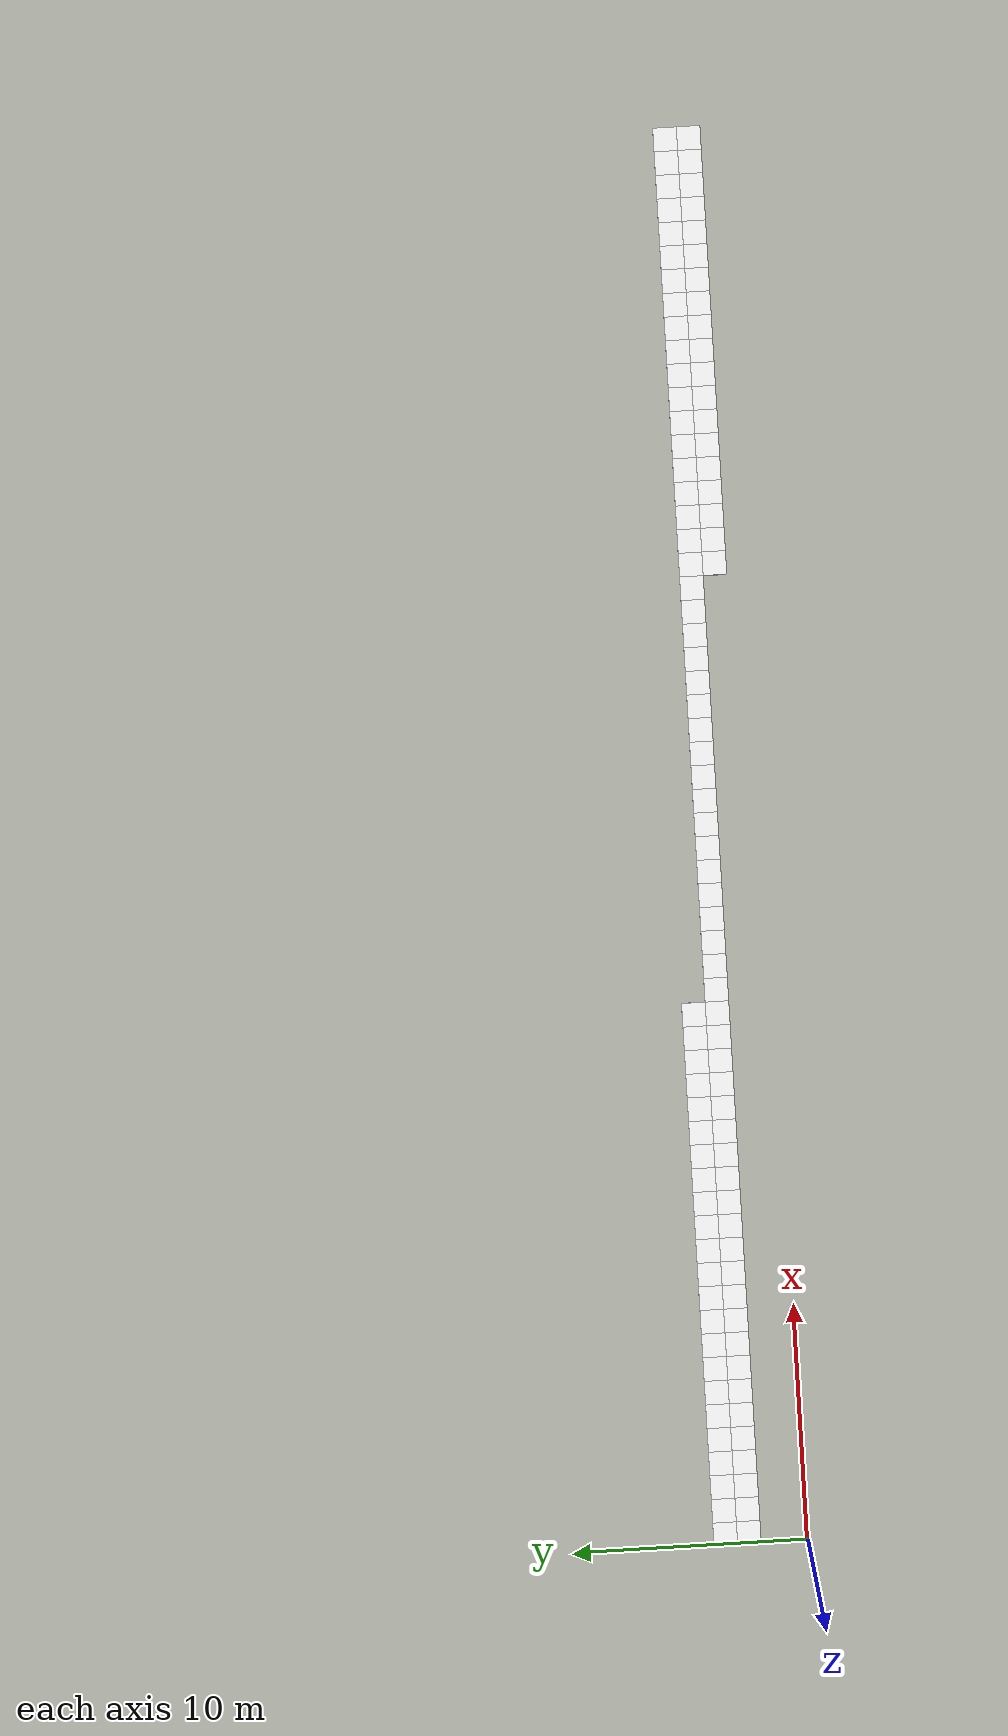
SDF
<sdf version="1.6">
 <world name="grid_world">
  <model name="cell_41_1">
   <static>true</static>
   <link name="link">
    <collision name="collision"><geometry><box><size>1 1 0.1</size></box></geometry></collision>
    <visual name="visual">
     <geometry><box><size>1 1 0.1</size></box></geometry>
     <material>
      <script><uri>file://media/materials/scripts/gazebo.material</uri><name>Gazebo/White</name></script>
     </material>
    </visual>
    <pose>41.5 1.5 0.05 0 0 0</pose>
   </link>
  </model>
  <model name="cell_42_1">
   <static>true</static>
   <link name="link">
    <collision name="collision"><geometry><box><size>1 1 0.1</size></box></geometry></collision>
    <visual name="visual">
     <geometry><box><size>1 1 0.1</size></box></geometry>
     <material>
      <script><uri>file://media/materials/scripts/gazebo.material</uri><name>Gazebo/White</name></script>
     </material>
    </visual>
    <pose>42.5 1.5 0.05 0 0 0</pose>
   </link>
  </model>
  <model name="cell_43_1">
   <static>true</static>
   <link name="link">
    <collision name="collision"><geometry><box><size>1 1 0.1</size></box></geometry></collision>
    <visual name="visual">
     <geometry><box><size>1 1 0.1</size></box></geometry>
     <material>
      <script><uri>file://media/materials/scripts/gazebo.material</uri><name>Gazebo/White</name></script>
     </material>
    </visual>
    <pose>43.5 1.5 0.05 0 0 0</pose>
   </link>
  </model>
  <model name="cell_44_1">
   <static>true</static>
   <link name="link">
    <collision name="collision"><geometry><box><size>1 1 0.1</size></box></geometry></collision>
    <visual name="visual">
     <geometry><box><size>1 1 0.1</size></box></geometry>
     <material>
      <script><uri>file://media/materials/scripts/gazebo.material</uri><name>Gazebo/White</name></script>
     </material>
    </visual>
    <pose>44.5 1.5 0.05 0 0 0</pose>
   </link>
  </model>
  <model name="cell_45_1">
   <static>true</static>
   <link name="link">
    <collision name="collision"><geometry><box><size>1 1 0.1</size></box></geometry></collision>
    <visual name="visual">
     <geometry><box><size>1 1 0.1</size></box></geometry>
     <material>
      <script><uri>file://media/materials/scripts/gazebo.material</uri><name>Gazebo/White</name></script>
     </material>
    </visual>
    <pose>45.5 1.5 0.05 0 0 0</pose>
   </link>
  </model>
  <model name="cell_46_1">
   <static>true</static>
   <link name="link">
    <collision name="collision"><geometry><box><size>1 1 0.1</size></box></geometry></collision>
    <visual name="visual">
     <geometry><box><size>1 1 0.1</size></box></geometry>
     <material>
      <script><uri>file://media/materials/scripts/gazebo.material</uri><name>Gazebo/White</name></script>
     </material>
    </visual>
    <pose>46.5 1.5 0.05 0 0 0</pose>
   </link>
  </model>
  <model name="cell_47_1">
   <static>true</static>
   <link name="link">
    <collision name="collision"><geometry><box><size>1 1 0.1</size></box></geometry></collision>
    <visual name="visual">
     <geometry><box><size>1 1 0.1</size></box></geometry>
     <material>
      <script><uri>file://media/materials/scripts/gazebo.material</uri><name>Gazebo/White</name></script>
     </material>
    </visual>
    <pose>47.5 1.5 0.05 0 0 0</pose>
   </link>
  </model>
  <model name="cell_48_1">
   <static>true</static>
   <link name="link">
    <collision name="collision"><geometry><box><size>1 1 0.1</size></box></geometry></collision>
    <visual name="visual">
     <geometry><box><size>1 1 0.1</size></box></geometry>
     <material>
      <script><uri>file://media/materials/scripts/gazebo.material</uri><name>Gazebo/White</name></script>
     </material>
    </visual>
    <pose>48.5 1.5 0.05 0 0 0</pose>
   </link>
  </model>
  <model name="cell_49_1">
   <static>true</static>
   <link name="link">
    <collision name="collision"><geometry><box><size>1 1 0.1</size></box></geometry></collision>
    <visual name="visual">
     <geometry><box><size>1 1 0.1</size></box></geometry>
     <material>
      <script><uri>file://media/materials/scripts/gazebo.material</uri><name>Gazebo/White</name></script>
     </material>
    </visual>
    <pose>49.5 1.5 0.05 0 0 0</pose>
   </link>
  </model>
  <model name="cell_50_1">
   <static>true</static>
   <link name="link">
    <collision name="collision"><geometry><box><size>1 1 0.1</size></box></geometry></collision>
    <visual name="visual">
     <geometry><box><size>1 1 0.1</size></box></geometry>
     <material>
      <script><uri>file://media/materials/scripts/gazebo.material</uri><name>Gazebo/White</name></script>
     </material>
    </visual>
    <pose>50.5 1.5 0.05 0 0 0</pose>
   </link>
  </model>
  <model name="cell_51_1">
   <static>true</static>
   <link name="link">
    <collision name="collision"><geometry><box><size>1 1 0.1</size></box></geometry></collision>
    <visual name="visual">
     <geometry><box><size>1 1 0.1</size></box></geometry>
     <material>
      <script><uri>file://media/materials/scripts/gazebo.material</uri><name>Gazebo/White</name></script>
     </material>
    </visual>
    <pose>51.5 1.5 0.05 0 0 0</pose>
   </link>
  </model>
  <model name="cell_52_1">
   <static>true</static>
   <link name="link">
    <collision name="collision"><geometry><box><size>1 1 0.1</size></box></geometry></collision>
    <visual name="visual">
     <geometry><box><size>1 1 0.1</size></box></geometry>
     <material>
      <script><uri>file://media/materials/scripts/gazebo.material</uri><name>Gazebo/White</name></script>
     </material>
    </visual>
    <pose>52.5 1.5 0.05 0 0 0</pose>
   </link>
  </model>
  <model name="cell_53_1">
   <static>true</static>
   <link name="link">
    <collision name="collision"><geometry><box><size>1 1 0.1</size></box></geometry></collision>
    <visual name="visual">
     <geometry><box><size>1 1 0.1</size></box></geometry>
     <material>
      <script><uri>file://media/materials/scripts/gazebo.material</uri><name>Gazebo/White</name></script>
     </material>
    </visual>
    <pose>53.5 1.5 0.05 0 0 0</pose>
   </link>
  </model>
  <model name="cell_54_1">
   <static>true</static>
   <link name="link">
    <collision name="collision"><geometry><box><size>1 1 0.1</size></box></geometry></collision>
    <visual name="visual">
     <geometry><box><size>1 1 0.1</size></box></geometry>
     <material>
      <script><uri>file://media/materials/scripts/gazebo.material</uri><name>Gazebo/White</name></script>
     </material>
    </visual>
    <pose>54.5 1.5 0.05 0 0 0</pose>
   </link>
  </model>
  <model name="cell_55_1">
   <static>true</static>
   <link name="link">
    <collision name="collision"><geometry><box><size>1 1 0.1</size></box></geometry></collision>
    <visual name="visual">
     <geometry><box><size>1 1 0.1</size></box></geometry>
     <material>
      <script><uri>file://media/materials/scripts/gazebo.material</uri><name>Gazebo/White</name></script>
     </material>
    </visual>
    <pose>55.5 1.5 0.05 0 0 0</pose>
   </link>
  </model>
  <model name="cell_56_1">
   <static>true</static>
   <link name="link">
    <collision name="collision"><geometry><box><size>1 1 0.1</size></box></geometry></collision>
    <visual name="visual">
     <geometry><box><size>1 1 0.1</size></box></geometry>
     <material>
      <script><uri>file://media/materials/scripts/gazebo.material</uri><name>Gazebo/White</name></script>
     </material>
    </visual>
    <pose>56.5 1.5 0.05 0 0 0</pose>
   </link>
  </model>
  <model name="cell_57_1">
   <static>true</static>
   <link name="link">
    <collision name="collision"><geometry><box><size>1 1 0.1</size></box></geometry></collision>
    <visual name="visual">
     <geometry><box><size>1 1 0.1</size></box></geometry>
     <material>
      <script><uri>file://media/materials/scripts/gazebo.material</uri><name>Gazebo/White</name></script>
     </material>
    </visual>
    <pose>57.5 1.5 0.05 0 0 0</pose>
   </link>
  </model>
  <model name="cell_58_1">
   <static>true</static>
   <link name="link">
    <collision name="collision"><geometry><box><size>1 1 0.1</size></box></geometry></collision>
    <visual name="visual">
     <geometry><box><size>1 1 0.1</size></box></geometry>
     <material>
      <script><uri>file://media/materials/scripts/gazebo.material</uri><name>Gazebo/White</name></script>
     </material>
    </visual>
    <pose>58.5 1.5 0.05 0 0 0</pose>
   </link>
  </model>
  <model name="cell_59_1">
   <static>true</static>
   <link name="link">
    <collision name="collision"><geometry><box><size>1 1 0.1</size></box></geometry></collision>
    <visual name="visual">
     <geometry><box><size>1 1 0.1</size></box></geometry>
     <material>
      <script><uri>file://media/materials/scripts/gazebo.material</uri><name>Gazebo/White</name></script>
     </material>
    </visual>
    <pose>59.5 1.5 0.05 0 0 0</pose>
   </link>
  </model>
  <model name="cell_0_2">
   <static>true</static>
   <link name="link">
    <collision name="collision"><geometry><box><size>1 1 0.1</size></box></geometry></collision>
    <visual name="visual">
     <geometry><box><size>1 1 0.1</size></box></geometry>
     <material>
      <script><uri>file://media/materials/scripts/gazebo.material</uri><name>Gazebo/White</name></script>
     </material>
    </visual>
    <pose>0.5 2.5 0.05 0 0 0</pose>
   </link>
  </model>
  <model name="cell_1_2">
   <static>true</static>
   <link name="link">
    <collision name="collision"><geometry><box><size>1 1 0.1</size></box></geometry></collision>
    <visual name="visual">
     <geometry><box><size>1 1 0.1</size></box></geometry>
     <material>
      <script><uri>file://media/materials/scripts/gazebo.material</uri><name>Gazebo/White</name></script>
     </material>
    </visual>
    <pose>1.5 2.5 0.05 0 0 0</pose>
   </link>
  </model>
  <model name="cell_2_2">
   <static>true</static>
   <link name="link">
    <collision name="collision"><geometry><box><size>1 1 0.1</size></box></geometry></collision>
    <visual name="visual">
     <geometry><box><size>1 1 0.1</size></box></geometry>
     <material>
      <script><uri>file://media/materials/scripts/gazebo.material</uri><name>Gazebo/White</name></script>
     </material>
    </visual>
    <pose>2.5 2.5 0.05 0 0 0</pose>
   </link>
  </model>
  <model name="cell_3_2">
   <static>true</static>
   <link name="link">
    <collision name="collision"><geometry><box><size>1 1 0.1</size></box></geometry></collision>
    <visual name="visual">
     <geometry><box><size>1 1 0.1</size></box></geometry>
     <material>
      <script><uri>file://media/materials/scripts/gazebo.material</uri><name>Gazebo/White</name></script>
     </material>
    </visual>
    <pose>3.5 2.5 0.05 0 0 0</pose>
   </link>
  </model>
  <model name="cell_4_2">
   <static>true</static>
   <link name="link">
    <collision name="collision"><geometry><box><size>1 1 0.1</size></box></geometry></collision>
    <visual name="visual">
     <geometry><box><size>1 1 0.1</size></box></geometry>
     <material>
      <script><uri>file://media/materials/scripts/gazebo.material</uri><name>Gazebo/White</name></script>
     </material>
    </visual>
    <pose>4.5 2.5 0.05 0 0 0</pose>
   </link>
  </model>
  <model name="cell_5_2">
   <static>true</static>
   <link name="link">
    <collision name="collision"><geometry><box><size>1 1 0.1</size></box></geometry></collision>
    <visual name="visual">
     <geometry><box><size>1 1 0.1</size></box></geometry>
     <material>
      <script><uri>file://media/materials/scripts/gazebo.material</uri><name>Gazebo/White</name></script>
     </material>
    </visual>
    <pose>5.5 2.5 0.05 0 0 0</pose>
   </link>
  </model>
  <model name="cell_6_2">
   <static>true</static>
   <link name="link">
    <collision name="collision"><geometry><box><size>1 1 0.1</size></box></geometry></collision>
    <visual name="visual">
     <geometry><box><size>1 1 0.1</size></box></geometry>
     <material>
      <script><uri>file://media/materials/scripts/gazebo.material</uri><name>Gazebo/White</name></script>
     </material>
    </visual>
    <pose>6.5 2.5 0.05 0 0 0</pose>
   </link>
  </model>
  <model name="cell_7_2">
   <static>true</static>
   <link name="link">
    <collision name="collision"><geometry><box><size>1 1 0.1</size></box></geometry></collision>
    <visual name="visual">
     <geometry><box><size>1 1 0.1</size></box></geometry>
     <material>
      <script><uri>file://media/materials/scripts/gazebo.material</uri><name>Gazebo/White</name></script>
     </material>
    </visual>
    <pose>7.5 2.5 0.05 0 0 0</pose>
   </link>
  </model>
  <model name="cell_8_2">
   <static>true</static>
   <link name="link">
    <collision name="collision"><geometry><box><size>1 1 0.1</size></box></geometry></collision>
    <visual name="visual">
     <geometry><box><size>1 1 0.1</size></box></geometry>
     <material>
      <script><uri>file://media/materials/scripts/gazebo.material</uri><name>Gazebo/White</name></script>
     </material>
    </visual>
    <pose>8.5 2.5 0.05 0 0 0</pose>
   </link>
  </model>
  <model name="cell_9_2">
   <static>true</static>
   <link name="link">
    <collision name="collision"><geometry><box><size>1 1 0.1</size></box></geometry></collision>
    <visual name="visual">
     <geometry><box><size>1 1 0.1</size></box></geometry>
     <material>
      <script><uri>file://media/materials/scripts/gazebo.material</uri><name>Gazebo/White</name></script>
     </material>
    </visual>
    <pose>9.5 2.5 0.05 0 0 0</pose>
   </link>
  </model>
  <model name="cell_10_2">
   <static>true</static>
   <link name="link">
    <collision name="collision"><geometry><box><size>1 1 0.1</size></box></geometry></collision>
    <visual name="visual">
     <geometry><box><size>1 1 0.1</size></box></geometry>
     <material>
      <script><uri>file://media/materials/scripts/gazebo.material</uri><name>Gazebo/White</name></script>
     </material>
    </visual>
    <pose>10.5 2.5 0.05 0 0 0</pose>
   </link>
  </model>
  <model name="cell_11_2">
   <static>true</static>
   <link name="link">
    <collision name="collision"><geometry><box><size>1 1 0.1</size></box></geometry></collision>
    <visual name="visual">
     <geometry><box><size>1 1 0.1</size></box></geometry>
     <material>
      <script><uri>file://media/materials/scripts/gazebo.material</uri><name>Gazebo/White</name></script>
     </material>
    </visual>
    <pose>11.5 2.5 0.05 0 0 0</pose>
   </link>
  </model>
  <model name="cell_12_2">
   <static>true</static>
   <link name="link">
    <collision name="collision"><geometry><box><size>1 1 0.1</size></box></geometry></collision>
    <visual name="visual">
     <geometry><box><size>1 1 0.1</size></box></geometry>
     <material>
      <script><uri>file://media/materials/scripts/gazebo.material</uri><name>Gazebo/White</name></script>
     </material>
    </visual>
    <pose>12.5 2.5 0.05 0 0 0</pose>
   </link>
  </model>
  <model name="cell_13_2">
   <static>true</static>
   <link name="link">
    <collision name="collision"><geometry><box><size>1 1 0.1</size></box></geometry></collision>
    <visual name="visual">
     <geometry><box><size>1 1 0.1</size></box></geometry>
     <material>
      <script><uri>file://media/materials/scripts/gazebo.material</uri><name>Gazebo/White</name></script>
     </material>
    </visual>
    <pose>13.5 2.5 0.05 0 0 0</pose>
   </link>
  </model>
  <model name="cell_14_2">
   <static>true</static>
   <link name="link">
    <collision name="collision"><geometry><box><size>1 1 0.1</size></box></geometry></collision>
    <visual name="visual">
     <geometry><box><size>1 1 0.1</size></box></geometry>
     <material>
      <script><uri>file://media/materials/scripts/gazebo.material</uri><name>Gazebo/White</name></script>
     </material>
    </visual>
    <pose>14.5 2.5 0.05 0 0 0</pose>
   </link>
  </model>
  <model name="cell_15_2">
   <static>true</static>
   <link name="link">
    <collision name="collision"><geometry><box><size>1 1 0.1</size></box></geometry></collision>
    <visual name="visual">
     <geometry><box><size>1 1 0.1</size></box></geometry>
     <material>
      <script><uri>file://media/materials/scripts/gazebo.material</uri><name>Gazebo/White</name></script>
     </material>
    </visual>
    <pose>15.5 2.5 0.05 0 0 0</pose>
   </link>
  </model>
  <model name="cell_16_2">
   <static>true</static>
   <link name="link">
    <collision name="collision"><geometry><box><size>1 1 0.1</size></box></geometry></collision>
    <visual name="visual">
     <geometry><box><size>1 1 0.1</size></box></geometry>
     <material>
      <script><uri>file://media/materials/scripts/gazebo.material</uri><name>Gazebo/White</name></script>
     </material>
    </visual>
    <pose>16.5 2.5 0.05 0 0 0</pose>
   </link>
  </model>
  <model name="cell_17_2">
   <static>true</static>
   <link name="link">
    <collision name="collision"><geometry><box><size>1 1 0.1</size></box></geometry></collision>
    <visual name="visual">
     <geometry><box><size>1 1 0.1</size></box></geometry>
     <material>
      <script><uri>file://media/materials/scripts/gazebo.material</uri><name>Gazebo/White</name></script>
     </material>
    </visual>
    <pose>17.5 2.5 0.05 0 0 0</pose>
   </link>
  </model>
  <model name="cell_18_2">
   <static>true</static>
   <link name="link">
    <collision name="collision"><geometry><box><size>1 1 0.1</size></box></geometry></collision>
    <visual name="visual">
     <geometry><box><size>1 1 0.1</size></box></geometry>
     <material>
      <script><uri>file://media/materials/scripts/gazebo.material</uri><name>Gazebo/White</name></script>
     </material>
    </visual>
    <pose>18.5 2.5 0.05 0 0 0</pose>
   </link>
  </model>
  <model name="cell_19_2">
   <static>true</static>
   <link name="link">
    <collision name="collision"><geometry><box><size>1 1 0.1</size></box></geometry></collision>
    <visual name="visual">
     <geometry><box><size>1 1 0.1</size></box></geometry>
     <material>
      <script><uri>file://media/materials/scripts/gazebo.material</uri><name>Gazebo/White</name></script>
     </material>
    </visual>
    <pose>19.5 2.5 0.05 0 0 0</pose>
   </link>
  </model>
  <model name="cell_20_2">
   <static>true</static>
   <link name="link">
    <collision name="collision"><geometry><box><size>1 1 0.1</size></box></geometry></collision>
    <visual name="visual">
     <geometry><box><size>1 1 0.1</size></box></geometry>
     <material>
      <script><uri>file://media/materials/scripts/gazebo.material</uri><name>Gazebo/White</name></script>
     </material>
    </visual>
    <pose>20.5 2.5 0.05 0 0 0</pose>
   </link>
  </model>
  <model name="cell_21_2">
   <static>true</static>
   <link name="link">
    <collision name="collision"><geometry><box><size>1 1 0.1</size></box></geometry></collision>
    <visual name="visual">
     <geometry><box><size>1 1 0.1</size></box></geometry>
     <material>
      <script><uri>file://media/materials/scripts/gazebo.material</uri><name>Gazebo/White</name></script>
     </material>
    </visual>
    <pose>21.5 2.5 0.05 0 0 0</pose>
   </link>
  </model>
  <model name="cell_22_2">
   <static>true</static>
   <link name="link">
    <collision name="collision"><geometry><box><size>1 1 0.1</size></box></geometry></collision>
    <visual name="visual">
     <geometry><box><size>1 1 0.1</size></box></geometry>
     <material>
      <script><uri>file://media/materials/scripts/gazebo.material</uri><name>Gazebo/White</name></script>
     </material>
    </visual>
    <pose>22.5 2.5 0.05 0 0 0</pose>
   </link>
  </model>
  <model name="cell_23_2">
   <static>true</static>
   <link name="link">
    <collision name="collision"><geometry><box><size>1 1 0.1</size></box></geometry></collision>
    <visual name="visual">
     <geometry><box><size>1 1 0.1</size></box></geometry>
     <material>
      <script><uri>file://media/materials/scripts/gazebo.material</uri><name>Gazebo/White</name></script>
     </material>
    </visual>
    <pose>23.5 2.5 0.05 0 0 0</pose>
   </link>
  </model>
  <model name="cell_24_2">
   <static>true</static>
   <link name="link">
    <collision name="collision"><geometry><box><size>1 1 0.1</size></box></geometry></collision>
    <visual name="visual">
     <geometry><box><size>1 1 0.1</size></box></geometry>
     <material>
      <script><uri>file://media/materials/scripts/gazebo.material</uri><name>Gazebo/White</name></script>
     </material>
    </visual>
    <pose>24.5 2.5 0.05 0 0 0</pose>
   </link>
  </model>
  <model name="cell_25_2">
   <static>true</static>
   <link name="link">
    <collision name="collision"><geometry><box><size>1 1 0.1</size></box></geometry></collision>
    <visual name="visual">
     <geometry><box><size>1 1 0.1</size></box></geometry>
     <material>
      <script><uri>file://media/materials/scripts/gazebo.material</uri><name>Gazebo/White</name></script>
     </material>
    </visual>
    <pose>25.5 2.5 0.05 0 0 0</pose>
   </link>
  </model>
  <model name="cell_26_2">
   <static>true</static>
   <link name="link">
    <collision name="collision"><geometry><box><size>1 1 0.1</size></box></geometry></collision>
    <visual name="visual">
     <geometry><box><size>1 1 0.1</size></box></geometry>
     <material>
      <script><uri>file://media/materials/scripts/gazebo.material</uri><name>Gazebo/White</name></script>
     </material>
    </visual>
    <pose>26.5 2.5 0.05 0 0 0</pose>
   </link>
  </model>
  <model name="cell_27_2">
   <static>true</static>
   <link name="link">
    <collision name="collision"><geometry><box><size>1 1 0.1</size></box></geometry></collision>
    <visual name="visual">
     <geometry><box><size>1 1 0.1</size></box></geometry>
     <material>
      <script><uri>file://media/materials/scripts/gazebo.material</uri><name>Gazebo/White</name></script>
     </material>
    </visual>
    <pose>27.5 2.5 0.05 0 0 0</pose>
   </link>
  </model>
  <model name="cell_28_2">
   <static>true</static>
   <link name="link">
    <collision name="collision"><geometry><box><size>1 1 0.1</size></box></geometry></collision>
    <visual name="visual">
     <geometry><box><size>1 1 0.1</size></box></geometry>
     <material>
      <script><uri>file://media/materials/scripts/gazebo.material</uri><name>Gazebo/White</name></script>
     </material>
    </visual>
    <pose>28.5 2.5 0.05 0 0 0</pose>
   </link>
  </model>
  <model name="cell_29_2">
   <static>true</static>
   <link name="link">
    <collision name="collision"><geometry><box><size>1 1 0.1</size></box></geometry></collision>
    <visual name="visual">
     <geometry><box><size>1 1 0.1</size></box></geometry>
     <material>
      <script><uri>file://media/materials/scripts/gazebo.material</uri><name>Gazebo/White</name></script>
     </material>
    </visual>
    <pose>29.5 2.5 0.05 0 0 0</pose>
   </link>
  </model>
  <model name="cell_30_2">
   <static>true</static>
   <link name="link">
    <collision name="collision"><geometry><box><size>1 1 0.1</size></box></geometry></collision>
    <visual name="visual">
     <geometry><box><size>1 1 0.1</size></box></geometry>
     <material>
      <script><uri>file://media/materials/scripts/gazebo.material</uri><name>Gazebo/White</name></script>
     </material>
    </visual>
    <pose>30.5 2.5 0.05 0 0 0</pose>
   </link>
  </model>
  <model name="cell_31_2">
   <static>true</static>
   <link name="link">
    <collision name="collision"><geometry><box><size>1 1 0.1</size></box></geometry></collision>
    <visual name="visual">
     <geometry><box><size>1 1 0.1</size></box></geometry>
     <material>
      <script><uri>file://media/materials/scripts/gazebo.material</uri><name>Gazebo/White</name></script>
     </material>
    </visual>
    <pose>31.5 2.5 0.05 0 0 0</pose>
   </link>
  </model>
  <model name="cell_32_2">
   <static>true</static>
   <link name="link">
    <collision name="collision"><geometry><box><size>1 1 0.1</size></box></geometry></collision>
    <visual name="visual">
     <geometry><box><size>1 1 0.1</size></box></geometry>
     <material>
      <script><uri>file://media/materials/scripts/gazebo.material</uri><name>Gazebo/White</name></script>
     </material>
    </visual>
    <pose>32.5 2.5 0.05 0 0 0</pose>
   </link>
  </model>
  <model name="cell_33_2">
   <static>true</static>
   <link name="link">
    <collision name="collision"><geometry><box><size>1 1 0.1</size></box></geometry></collision>
    <visual name="visual">
     <geometry><box><size>1 1 0.1</size></box></geometry>
     <material>
      <script><uri>file://media/materials/scripts/gazebo.material</uri><name>Gazebo/White</name></script>
     </material>
    </visual>
    <pose>33.5 2.5 0.05 0 0 0</pose>
   </link>
  </model>
  <model name="cell_34_2">
   <static>true</static>
   <link name="link">
    <collision name="collision"><geometry><box><size>1 1 0.1</size></box></geometry></collision>
    <visual name="visual">
     <geometry><box><size>1 1 0.1</size></box></geometry>
     <material>
      <script><uri>file://media/materials/scripts/gazebo.material</uri><name>Gazebo/White</name></script>
     </material>
    </visual>
    <pose>34.5 2.5 0.05 0 0 0</pose>
   </link>
  </model>
  <model name="cell_35_2">
   <static>true</static>
   <link name="link">
    <collision name="collision"><geometry><box><size>1 1 0.1</size></box></geometry></collision>
    <visual name="visual">
     <geometry><box><size>1 1 0.1</size></box></geometry>
     <material>
      <script><uri>file://media/materials/scripts/gazebo.material</uri><name>Gazebo/White</name></script>
     </material>
    </visual>
    <pose>35.5 2.5 0.05 0 0 0</pose>
   </link>
  </model>
  <model name="cell_36_2">
   <static>true</static>
   <link name="link">
    <collision name="collision"><geometry><box><size>1 1 0.1</size></box></geometry></collision>
    <visual name="visual">
     <geometry><box><size>1 1 0.1</size></box></geometry>
     <material>
      <script><uri>file://media/materials/scripts/gazebo.material</uri><name>Gazebo/White</name></script>
     </material>
    </visual>
    <pose>36.5 2.5 0.05 0 0 0</pose>
   </link>
  </model>
  <model name="cell_37_2">
   <static>true</static>
   <link name="link">
    <collision name="collision"><geometry><box><size>1 1 0.1</size></box></geometry></collision>
    <visual name="visual">
     <geometry><box><size>1 1 0.1</size></box></geometry>
     <material>
      <script><uri>file://media/materials/scripts/gazebo.material</uri><name>Gazebo/White</name></script>
     </material>
    </visual>
    <pose>37.5 2.5 0.05 0 0 0</pose>
   </link>
  </model>
  <model name="cell_38_2">
   <static>true</static>
   <link name="link">
    <collision name="collision"><geometry><box><size>1 1 0.1</size></box></geometry></collision>
    <visual name="visual">
     <geometry><box><size>1 1 0.1</size></box></geometry>
     <material>
      <script><uri>file://media/materials/scripts/gazebo.material</uri><name>Gazebo/White</name></script>
     </material>
    </visual>
    <pose>38.5 2.5 0.05 0 0 0</pose>
   </link>
  </model>
  <model name="cell_39_2">
   <static>true</static>
   <link name="link">
    <collision name="collision"><geometry><box><size>1 1 0.1</size></box></geometry></collision>
    <visual name="visual">
     <geometry><box><size>1 1 0.1</size></box></geometry>
     <material>
      <script><uri>file://media/materials/scripts/gazebo.material</uri><name>Gazebo/White</name></script>
     </material>
    </visual>
    <pose>39.5 2.5 0.05 0 0 0</pose>
   </link>
  </model>
  <model name="cell_40_2">
   <static>true</static>
   <link name="link">
    <collision name="collision"><geometry><box><size>1 1 0.1</size></box></geometry></collision>
    <visual name="visual">
     <geometry><box><size>1 1 0.1</size></box></geometry>
     <material>
      <script><uri>file://media/materials/scripts/gazebo.material</uri><name>Gazebo/White</name></script>
     </material>
    </visual>
    <pose>40.5 2.5 0.05 0 0 0</pose>
   </link>
  </model>
  <model name="cell_41_2">
   <static>true</static>
   <link name="link">
    <collision name="collision"><geometry><box><size>1 1 0.1</size></box></geometry></collision>
    <visual name="visual">
     <geometry><box><size>1 1 0.1</size></box></geometry>
     <material>
      <script><uri>file://media/materials/scripts/gazebo.material</uri><name>Gazebo/White</name></script>
     </material>
    </visual>
    <pose>41.5 2.5 0.05 0 0 0</pose>
   </link>
  </model>
  <model name="cell_42_2">
   <static>true</static>
   <link name="link">
    <collision name="collision"><geometry><box><size>1 1 0.1</size></box></geometry></collision>
    <visual name="visual">
     <geometry><box><size>1 1 0.1</size></box></geometry>
     <material>
      <script><uri>file://media/materials/scripts/gazebo.material</uri><name>Gazebo/White</name></script>
     </material>
    </visual>
    <pose>42.5 2.5 0.05 0 0 0</pose>
   </link>
  </model>
  <model name="cell_43_2">
   <static>true</static>
   <link name="link">
    <collision name="collision"><geometry><box><size>1 1 0.1</size></box></geometry></collision>
    <visual name="visual">
     <geometry><box><size>1 1 0.1</size></box></geometry>
     <material>
      <script><uri>file://media/materials/scripts/gazebo.material</uri><name>Gazebo/White</name></script>
     </material>
    </visual>
    <pose>43.5 2.5 0.05 0 0 0</pose>
   </link>
  </model>
  <model name="cell_44_2">
   <static>true</static>
   <link name="link">
    <collision name="collision"><geometry><box><size>1 1 0.1</size></box></geometry></collision>
    <visual name="visual">
     <geometry><box><size>1 1 0.1</size></box></geometry>
     <material>
      <script><uri>file://media/materials/scripts/gazebo.material</uri><name>Gazebo/White</name></script>
     </material>
    </visual>
    <pose>44.5 2.5 0.05 0 0 0</pose>
   </link>
  </model>
  <model name="cell_45_2">
   <static>true</static>
   <link name="link">
    <collision name="collision"><geometry><box><size>1 1 0.1</size></box></geometry></collision>
    <visual name="visual">
     <geometry><box><size>1 1 0.1</size></box></geometry>
     <material>
      <script><uri>file://media/materials/scripts/gazebo.material</uri><name>Gazebo/White</name></script>
     </material>
    </visual>
    <pose>45.5 2.5 0.05 0 0 0</pose>
   </link>
  </model>
  <model name="cell_46_2">
   <static>true</static>
   <link name="link">
    <collision name="collision"><geometry><box><size>1 1 0.1</size></box></geometry></collision>
    <visual name="visual">
     <geometry><box><size>1 1 0.1</size></box></geometry>
     <material>
      <script><uri>file://media/materials/scripts/gazebo.material</uri><name>Gazebo/White</name></script>
     </material>
    </visual>
    <pose>46.5 2.5 0.05 0 0 0</pose>
   </link>
  </model>
  <model name="cell_47_2">
   <static>true</static>
   <link name="link">
    <collision name="collision"><geometry><box><size>1 1 0.1</size></box></geometry></collision>
    <visual name="visual">
     <geometry><box><size>1 1 0.1</size></box></geometry>
     <material>
      <script><uri>file://media/materials/scripts/gazebo.material</uri><name>Gazebo/White</name></script>
     </material>
    </visual>
    <pose>47.5 2.5 0.05 0 0 0</pose>
   </link>
  </model>
  <model name="cell_48_2">
   <static>true</static>
   <link name="link">
    <collision name="collision"><geometry><box><size>1 1 0.1</size></box></geometry></collision>
    <visual name="visual">
     <geometry><box><size>1 1 0.1</size></box></geometry>
     <material>
      <script><uri>file://media/materials/scripts/gazebo.material</uri><name>Gazebo/White</name></script>
     </material>
    </visual>
    <pose>48.5 2.5 0.05 0 0 0</pose>
   </link>
  </model>
  <model name="cell_49_2">
   <static>true</static>
   <link name="link">
    <collision name="collision"><geometry><box><size>1 1 0.1</size></box></geometry></collision>
    <visual name="visual">
     <geometry><box><size>1 1 0.1</size></box></geometry>
     <material>
      <script><uri>file://media/materials/scripts/gazebo.material</uri><name>Gazebo/White</name></script>
     </material>
    </visual>
    <pose>49.5 2.5 0.05 0 0 0</pose>
   </link>
  </model>
  <model name="cell_50_2">
   <static>true</static>
   <link name="link">
    <collision name="collision"><geometry><box><size>1 1 0.1</size></box></geometry></collision>
    <visual name="visual">
     <geometry><box><size>1 1 0.1</size></box></geometry>
     <material>
      <script><uri>file://media/materials/scripts/gazebo.material</uri><name>Gazebo/White</name></script>
     </material>
    </visual>
    <pose>50.5 2.5 0.05 0 0 0</pose>
   </link>
  </model>
  <model name="cell_51_2">
   <static>true</static>
   <link name="link">
    <collision name="collision"><geometry><box><size>1 1 0.1</size></box></geometry></collision>
    <visual name="visual">
     <geometry><box><size>1 1 0.1</size></box></geometry>
     <material>
      <script><uri>file://media/materials/scripts/gazebo.material</uri><name>Gazebo/White</name></script>
     </material>
    </visual>
    <pose>51.5 2.5 0.05 0 0 0</pose>
   </link>
  </model>
  <model name="cell_52_2">
   <static>true</static>
   <link name="link">
    <collision name="collision"><geometry><box><size>1 1 0.1</size></box></geometry></collision>
    <visual name="visual">
     <geometry><box><size>1 1 0.1</size></box></geometry>
     <material>
      <script><uri>file://media/materials/scripts/gazebo.material</uri><name>Gazebo/White</name></script>
     </material>
    </visual>
    <pose>52.5 2.5 0.05 0 0 0</pose>
   </link>
  </model>
  <model name="cell_53_2">
   <static>true</static>
   <link name="link">
    <collision name="collision"><geometry><box><size>1 1 0.1</size></box></geometry></collision>
    <visual name="visual">
     <geometry><box><size>1 1 0.1</size></box></geometry>
     <material>
      <script><uri>file://media/materials/scripts/gazebo.material</uri><name>Gazebo/White</name></script>
     </material>
    </visual>
    <pose>53.5 2.5 0.05 0 0 0</pose>
   </link>
  </model>
  <model name="cell_54_2">
   <static>true</static>
   <link name="link">
    <collision name="collision"><geometry><box><size>1 1 0.1</size></box></geometry></collision>
    <visual name="visual">
     <geometry><box><size>1 1 0.1</size></box></geometry>
     <material>
      <script><uri>file://media/materials/scripts/gazebo.material</uri><name>Gazebo/White</name></script>
     </material>
    </visual>
    <pose>54.5 2.5 0.05 0 0 0</pose>
   </link>
  </model>
  <model name="cell_55_2">
   <static>true</static>
   <link name="link">
    <collision name="collision"><geometry><box><size>1 1 0.1</size></box></geometry></collision>
    <visual name="visual">
     <geometry><box><size>1 1 0.1</size></box></geometry>
     <material>
      <script><uri>file://media/materials/scripts/gazebo.material</uri><name>Gazebo/White</name></script>
     </material>
    </visual>
    <pose>55.5 2.5 0.05 0 0 0</pose>
   </link>
  </model>
  <model name="cell_56_2">
   <static>true</static>
   <link name="link">
    <collision name="collision"><geometry><box><size>1 1 0.1</size></box></geometry></collision>
    <visual name="visual">
     <geometry><box><size>1 1 0.1</size></box></geometry>
     <material>
      <script><uri>file://media/materials/scripts/gazebo.material</uri><name>Gazebo/White</name></script>
     </material>
    </visual>
    <pose>56.5 2.5 0.05 0 0 0</pose>
   </link>
  </model>
  <model name="cell_57_2">
   <static>true</static>
   <link name="link">
    <collision name="collision"><geometry><box><size>1 1 0.1</size></box></geometry></collision>
    <visual name="visual">
     <geometry><box><size>1 1 0.1</size></box></geometry>
     <material>
      <script><uri>file://media/materials/scripts/gazebo.material</uri><name>Gazebo/White</name></script>
     </material>
    </visual>
    <pose>57.5 2.5 0.05 0 0 0</pose>
   </link>
  </model>
  <model name="cell_58_2">
   <static>true</static>
   <link name="link">
    <collision name="collision"><geometry><box><size>1 1 0.1</size></box></geometry></collision>
    <visual name="visual">
     <geometry><box><size>1 1 0.1</size></box></geometry>
     <material>
      <script><uri>file://media/materials/scripts/gazebo.material</uri><name>Gazebo/White</name></script>
     </material>
    </visual>
    <pose>58.5 2.5 0.05 0 0 0</pose>
   </link>
  </model>
  <model name="cell_59_2">
   <static>true</static>
   <link name="link">
    <collision name="collision"><geometry><box><size>1 1 0.1</size></box></geometry></collision>
    <visual name="visual">
     <geometry><box><size>1 1 0.1</size></box></geometry>
     <material>
      <script><uri>file://media/materials/scripts/gazebo.material</uri><name>Gazebo/White</name></script>
     </material>
    </visual>
    <pose>59.5 2.5 0.05 0 0 0</pose>
   </link>
  </model>
  <model name="cell_0_3">
   <static>true</static>
   <link name="link">
    <collision name="collision"><geometry><box><size>1 1 0.1</size></box></geometry></collision>
    <visual name="visual">
     <geometry><box><size>1 1 0.1</size></box></geometry>
     <material>
      <script><uri>file://media/materials/scripts/gazebo.material</uri><name>Gazebo/White</name></script>
     </material>
    </visual>
    <pose>0.5 3.5 0.05 0 0 0</pose>
   </link>
  </model>
  <model name="cell_1_3">
   <static>true</static>
   <link name="link">
    <collision name="collision"><geometry><box><size>1 1 0.1</size></box></geometry></collision>
    <visual name="visual">
     <geometry><box><size>1 1 0.1</size></box></geometry>
     <material>
      <script><uri>file://media/materials/scripts/gazebo.material</uri><name>Gazebo/White</name></script>
     </material>
    </visual>
    <pose>1.5 3.5 0.05 0 0 0</pose>
   </link>
  </model>
  <model name="cell_2_3">
   <static>true</static>
   <link name="link">
    <collision name="collision"><geometry><box><size>1 1 0.1</size></box></geometry></collision>
    <visual name="visual">
     <geometry><box><size>1 1 0.1</size></box></geometry>
     <material>
      <script><uri>file://media/materials/scripts/gazebo.material</uri><name>Gazebo/White</name></script>
     </material>
    </visual>
    <pose>2.5 3.5 0.05 0 0 0</pose>
   </link>
  </model>
  <model name="cell_3_3">
   <static>true</static>
   <link name="link">
    <collision name="collision"><geometry><box><size>1 1 0.1</size></box></geometry></collision>
    <visual name="visual">
     <geometry><box><size>1 1 0.1</size></box></geometry>
     <material>
      <script><uri>file://media/materials/scripts/gazebo.material</uri><name>Gazebo/White</name></script>
     </material>
    </visual>
    <pose>3.5 3.5 0.05 0 0 0</pose>
   </link>
  </model>
  <model name="cell_4_3">
   <static>true</static>
   <link name="link">
    <collision name="collision"><geometry><box><size>1 1 0.1</size></box></geometry></collision>
    <visual name="visual">
     <geometry><box><size>1 1 0.1</size></box></geometry>
     <material>
      <script><uri>file://media/materials/scripts/gazebo.material</uri><name>Gazebo/White</name></script>
     </material>
    </visual>
    <pose>4.5 3.5 0.05 0 0 0</pose>
   </link>
  </model>
  <model name="cell_5_3">
   <static>true</static>
   <link name="link">
    <collision name="collision"><geometry><box><size>1 1 0.1</size></box></geometry></collision>
    <visual name="visual">
     <geometry><box><size>1 1 0.1</size></box></geometry>
     <material>
      <script><uri>file://media/materials/scripts/gazebo.material</uri><name>Gazebo/White</name></script>
     </material>
    </visual>
    <pose>5.5 3.5 0.05 0 0 0</pose>
   </link>
  </model>
  <model name="cell_6_3">
   <static>true</static>
   <link name="link">
    <collision name="collision"><geometry><box><size>1 1 0.1</size></box></geometry></collision>
    <visual name="visual">
     <geometry><box><size>1 1 0.1</size></box></geometry>
     <material>
      <script><uri>file://media/materials/scripts/gazebo.material</uri><name>Gazebo/White</name></script>
     </material>
    </visual>
    <pose>6.5 3.5 0.05 0 0 0</pose>
   </link>
  </model>
  <model name="cell_7_3">
   <static>true</static>
   <link name="link">
    <collision name="collision"><geometry><box><size>1 1 0.1</size></box></geometry></collision>
    <visual name="visual">
     <geometry><box><size>1 1 0.1</size></box></geometry>
     <material>
      <script><uri>file://media/materials/scripts/gazebo.material</uri><name>Gazebo/White</name></script>
     </material>
    </visual>
    <pose>7.5 3.5 0.05 0 0 0</pose>
   </link>
  </model>
  <model name="cell_8_3">
   <static>true</static>
   <link name="link">
    <collision name="collision"><geometry><box><size>1 1 0.1</size></box></geometry></collision>
    <visual name="visual">
     <geometry><box><size>1 1 0.1</size></box></geometry>
     <material>
      <script><uri>file://media/materials/scripts/gazebo.material</uri><name>Gazebo/White</name></script>
     </material>
    </visual>
    <pose>8.5 3.5 0.05 0 0 0</pose>
   </link>
  </model>
  <model name="cell_9_3">
   <static>true</static>
   <link name="link">
    <collision name="collision"><geometry><box><size>1 1 0.1</size></box></geometry></collision>
    <visual name="visual">
     <geometry><box><size>1 1 0.1</size></box></geometry>
     <material>
      <script><uri>file://media/materials/scripts/gazebo.material</uri><name>Gazebo/White</name></script>
     </material>
    </visual>
    <pose>9.5 3.5 0.05 0 0 0</pose>
   </link>
  </model>
  <model name="cell_10_3">
   <static>true</static>
   <link name="link">
    <collision name="collision"><geometry><box><size>1 1 0.1</size></box></geometry></collision>
    <visual name="visual">
     <geometry><box><size>1 1 0.1</size></box></geometry>
     <material>
      <script><uri>file://media/materials/scripts/gazebo.material</uri><name>Gazebo/White</name></script>
     </material>
    </visual>
    <pose>10.5 3.5 0.05 0 0 0</pose>
   </link>
  </model>
  <model name="cell_11_3">
   <static>true</static>
   <link name="link">
    <collision name="collision"><geometry><box><size>1 1 0.1</size></box></geometry></collision>
    <visual name="visual">
     <geometry><box><size>1 1 0.1</size></box></geometry>
     <material>
      <script><uri>file://media/materials/scripts/gazebo.material</uri><name>Gazebo/White</name></script>
     </material>
    </visual>
    <pose>11.5 3.5 0.05 0 0 0</pose>
   </link>
  </model>
  <model name="cell_12_3">
   <static>true</static>
   <link name="link">
    <collision name="collision"><geometry><box><size>1 1 0.1</size></box></geometry></collision>
    <visual name="visual">
     <geometry><box><size>1 1 0.1</size></box></geometry>
     <material>
      <script><uri>file://media/materials/scripts/gazebo.material</uri><name>Gazebo/White</name></script>
     </material>
    </visual>
    <pose>12.5 3.5 0.05 0 0 0</pose>
   </link>
  </model>
  <model name="cell_13_3">
   <static>true</static>
   <link name="link">
    <collision name="collision"><geometry><box><size>1 1 0.1</size></box></geometry></collision>
    <visual name="visual">
     <geometry><box><size>1 1 0.1</size></box></geometry>
     <material>
      <script><uri>file://media/materials/scripts/gazebo.material</uri><name>Gazebo/White</name></script>
     </material>
    </visual>
    <pose>13.5 3.5 0.05 0 0 0</pose>
   </link>
  </model>
  <model name="cell_14_3">
   <static>true</static>
   <link name="link">
    <collision name="collision"><geometry><box><size>1 1 0.1</size></box></geometry></collision>
    <visual name="visual">
     <geometry><box><size>1 1 0.1</size></box></geometry>
     <material>
      <script><uri>file://media/materials/scripts/gazebo.material</uri><name>Gazebo/White</name></script>
     </material>
    </visual>
    <pose>14.5 3.5 0.05 0 0 0</pose>
   </link>
  </model>
  <model name="cell_15_3">
   <static>true</static>
   <link name="link">
    <collision name="collision"><geometry><box><size>1 1 0.1</size></box></geometry></collision>
    <visual name="visual">
     <geometry><box><size>1 1 0.1</size></box></geometry>
     <material>
      <script><uri>file://media/materials/scripts/gazebo.material</uri><name>Gazebo/White</name></script>
     </material>
    </visual>
    <pose>15.5 3.5 0.05 0 0 0</pose>
   </link>
  </model>
  <model name="cell_16_3">
   <static>true</static>
   <link name="link">
    <collision name="collision"><geometry><box><size>1 1 0.1</size></box></geometry></collision>
    <visual name="visual">
     <geometry><box><size>1 1 0.1</size></box></geometry>
     <material>
      <script><uri>file://media/materials/scripts/gazebo.material</uri><name>Gazebo/White</name></script>
     </material>
    </visual>
    <pose>16.5 3.5 0.05 0 0 0</pose>
   </link>
  </model>
  <model name="cell_17_3">
   <static>true</static>
   <link name="link">
    <collision name="collision"><geometry><box><size>1 1 0.1</size></box></geometry></collision>
    <visual name="visual">
     <geometry><box><size>1 1 0.1</size></box></geometry>
     <material>
      <script><uri>file://media/materials/scripts/gazebo.material</uri><name>Gazebo/White</name></script>
     </material>
    </visual>
    <pose>17.5 3.5 0.05 0 0 0</pose>
   </link>
  </model>
  <model name="cell_18_3">
   <static>true</static>
   <link name="link">
    <collision name="collision"><geometry><box><size>1 1 0.1</size></box></geometry></collision>
    <visual name="visual">
     <geometry><box><size>1 1 0.1</size></box></geometry>
     <material>
      <script><uri>file://media/materials/scripts/gazebo.material</uri><name>Gazebo/White</name></script>
     </material>
    </visual>
    <pose>18.5 3.5 0.05 0 0 0</pose>
   </link>
  </model>
  <model name="cell_19_3">
   <static>true</static>
   <link name="link">
    <collision name="collision"><geometry><box><size>1 1 0.1</size></box></geometry></collision>
    <visual name="visual">
     <geometry><box><size>1 1 0.1</size></box></geometry>
     <material>
      <script><uri>file://media/materials/scripts/gazebo.material</uri><name>Gazebo/White</name></script>
     </material>
    </visual>
    <pose>19.5 3.5 0.05 0 0 0</pose>
   </link>
  </model>
  <model name="cell_20_3">
   <static>true</static>
   <link name="link">
    <collision name="collision"><geometry><box><size>1 1 0.1</size></box></geometry></collision>
    <visual name="visual">
     <geometry><box><size>1 1 0.1</size></box></geometry>
     <material>
      <script><uri>file://media/materials/scripts/gazebo.material</uri><name>Gazebo/White</name></script>
     </material>
    </visual>
    <pose>20.5 3.5 0.05 0 0 0</pose>
   </link>
  </model>
  <model name="cell_21_3">
   <static>true</static>
   <link name="link">
    <collision name="collision"><geometry><box><size>1 1 0.1</size></box></geometry></collision>
    <visual name="visual">
     <geometry><box><size>1 1 0.1</size></box></geometry>
     <material>
      <script><uri>file://media/materials/scripts/gazebo.material</uri><name>Gazebo/White</name></script>
     </material>
    </visual>
    <pose>21.5 3.5 0.05 0 0 0</pose>
   </link>
  </model>
  <model name="cell_22_3">
   <static>true</static>
   <link name="link">
    <collision name="collision"><geometry><box><size>1 1 0.1</size></box></geometry></collision>
    <visual name="visual">
     <geometry><box><size>1 1 0.1</size></box></geometry>
     <material>
      <script><uri>file://media/materials/scripts/gazebo.material</uri><name>Gazebo/White</name></script>
     </material>
    </visual>
    <pose>22.5 3.5 0.05 0 0 0</pose>
   </link>
  </model>
 </world>
</sdf>
